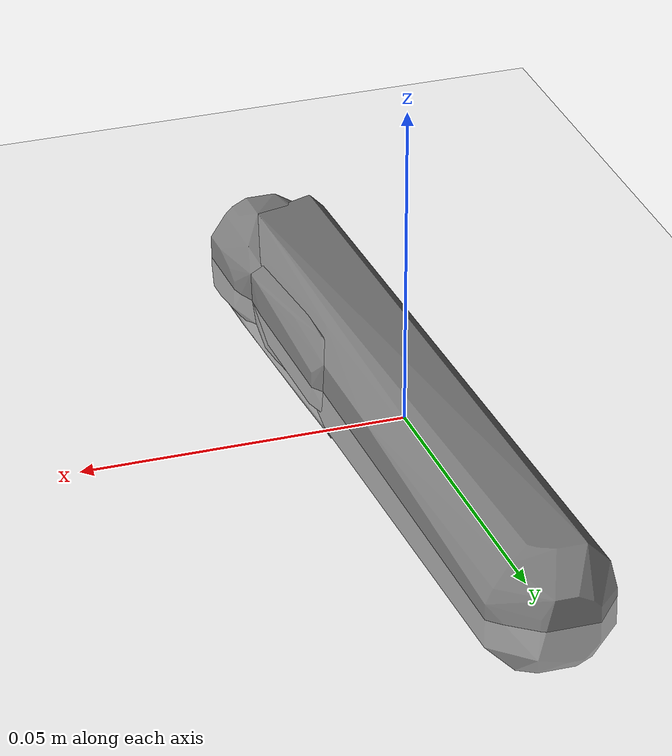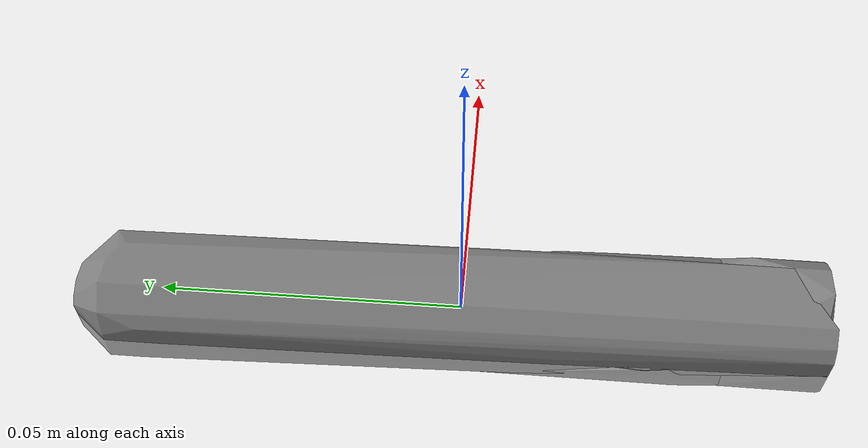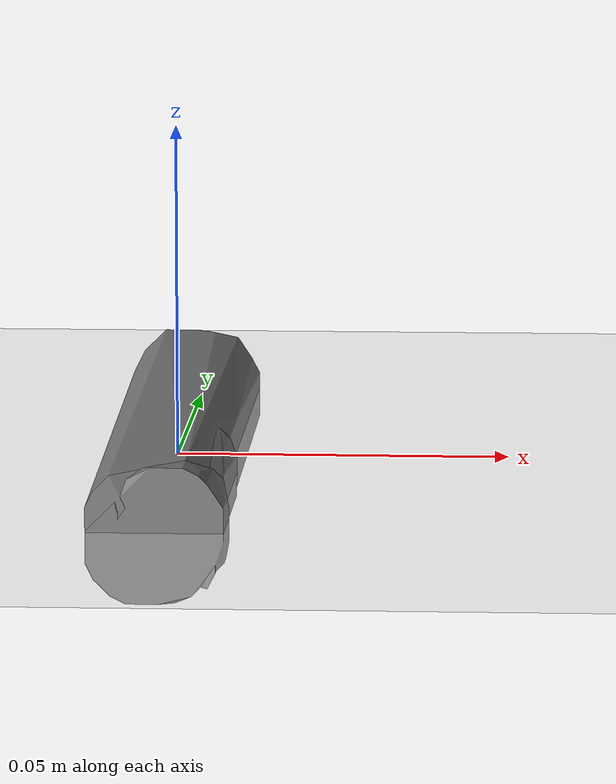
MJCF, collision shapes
<mujoco model="large_marker">
  <compiler meshdir="assets"/>
  <visual>
    <headlight ambient="0 0 0" diffuse="0 0 0" specular="1 1 1"/>
    <quality shadowsize="8192"/>
  </visual>

  <asset>
	<texture name="large_marker" file="assets/texture_map.png" type="2d"/>
    <material name="large_marker" texture="large_marker" specular="1" shininess="1"/>
    <mesh file="textured_simple.obj" scale="1 1 1"/>
    <mesh file="collision000.obj" scale="1 1 1"/>
    <mesh file="collision001.obj" scale="1 1 1"/>
    <mesh file="collision002.obj" scale="1 1 1"/>
    <mesh file="collision003.obj" scale="1 1 1"/>
    <mesh file="collision004.obj" scale="1 1 1"/>
    <material name="floor" reflectance=".1"/>
  </asset>

  <default>
    <default class="visual">
      <geom type="mesh" group="1" contype="0" conaffinity="0"/>
    </default>
    <default class="collision">
      <geom type="mesh" group="3" mass="0"/>
    </default>
  </default>

  <worldbody>
    <light pos=".4 -.4 .3" dir="-2 2 -1.5" diffuse=".6 .6 .6"/>
    <light pos="-.2 -.4 .3" dir="1 2 -1.5" diffuse=".6 .6 .6"/>
    <geom type="plane" size="5 5 .01" rgba="1 1 1 1" material="floor"/>
    <body name="large_marker">
      <freejoint/>
      <geom mesh="textured_simple" material="large_marker" mass="0.05" class="visual"/>
	  <geom mesh="collision000" class="collision"/>
	  <geom mesh="collision001" class="collision"/>
	  <geom mesh="collision002" class="collision"/>
	  <geom mesh="collision003" class="collision"/>
	  <geom mesh="collision004" class="collision"/>
    </body>
  </worldbody>
</mujoco>
